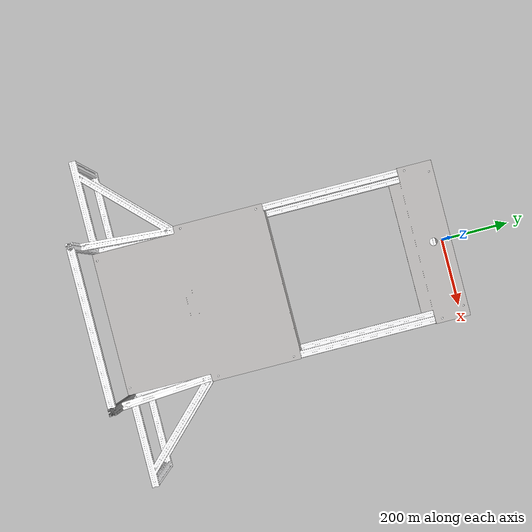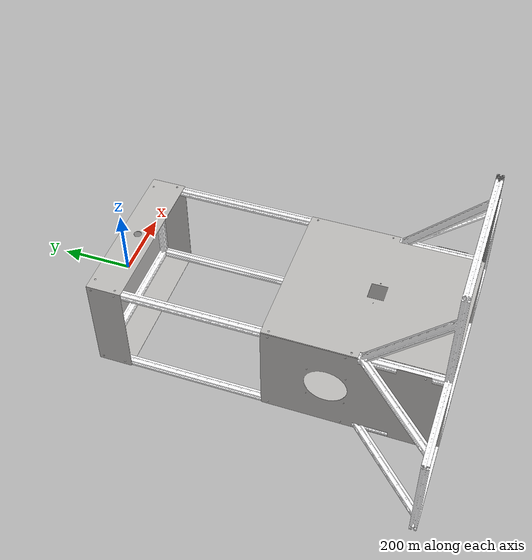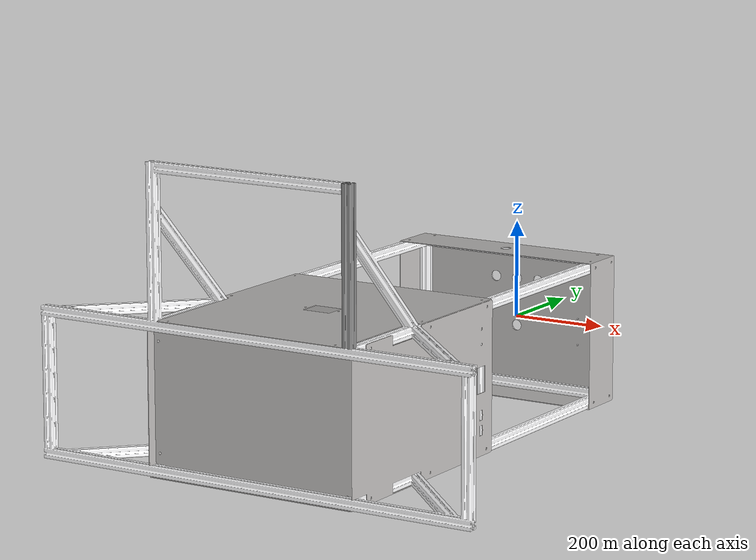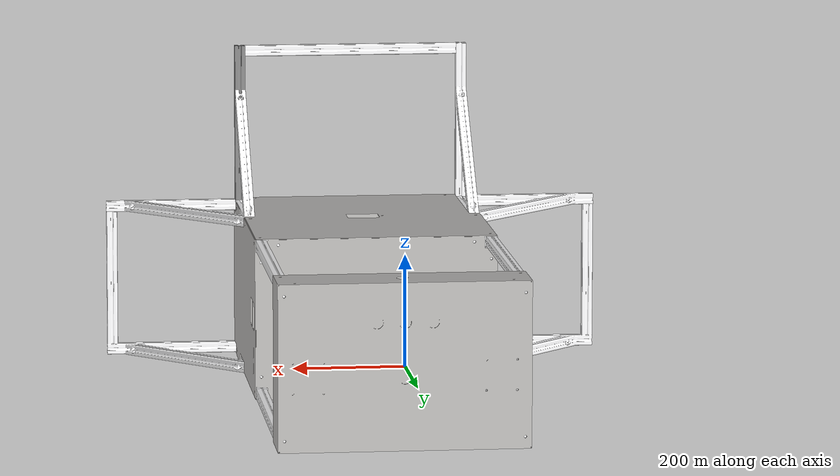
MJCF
<mujoco model="F0_Follower_Assy">
  <default>
    <default class="visual">
      <geom group="2" type="mesh" contype="0" conaffinity="0"/>
    </default>
    <default class="collision">
      <geom group="3" type="mesh"/>
    </default>
  </default>
  <asset>
    <material name="254,254,255" specular="0.9973853333333333" shininess="1.0" rgba="0.996078 0.996078 1.000000 1.000000"/>
    <material name="190,188,186" specular="0.7372549999999999" shininess="1.0" rgba="0.745098 0.737255 0.729412 1.000000"/>
    <material name="137,137,137" specular="1.0" shininess="0.2" rgba="0.537255 0.537255 0.537255 1.000000"/>
    <mesh file="F0_Follower_Assy_0.obj"/>
    <mesh file="F0_Follower_Assy_1.obj"/>
    <mesh file="F0_Follower_Assy_2.obj"/>
  </asset>
  <worldbody>
    <body name="F0_Follower_Assy">
      <geom mesh="F0_Follower_Assy_0" material="137,137,137" class="visual"/>
      <geom mesh="F0_Follower_Assy_1" material="190,188,186" class="visual"/>
      <geom mesh="F0_Follower_Assy_2" material="254,254,255" class="visual"/>
      <geom mesh="F0_Follower_Assy_0" class="collision"/>
      <geom mesh="F0_Follower_Assy_1" class="collision"/>
      <geom mesh="F0_Follower_Assy_2" class="collision"/>
    </body>
  </worldbody>
</mujoco>
